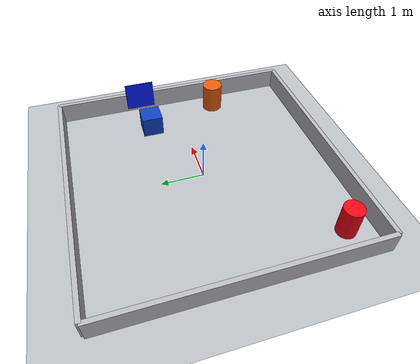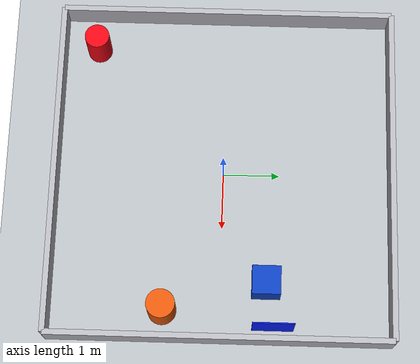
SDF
<?xml version="1.0"?>
<sdf version="1.6">
  <world name="zhirong_test_world">
    <gravity>0 0 -9.81</gravity>

    <physics name="default_physics" type="ode">
      <max_step_size>0.001</max_step_size>
      <real_time_factor>1.0</real_time_factor>
      <real_time_update_rate>1000.0</real_time_update_rate>
    </physics>

    <plugin name="gazebo_ros_state" filename="libgazebo_ros_state.so">
      <ros>
        <namespace>/</namespace>
      </ros>
      <update_rate>20.0</update_rate>
    </plugin>

    <light name="sun" type="directional">
      <cast_shadows>true</cast_shadows>
      <pose>0 0 10 0 0 0</pose>
      <diffuse>0.8 0.8 0.8 1</diffuse>
      <specular>0.2 0.2 0.2 1</specular>
      <attenuation>
        <range>1000</range>
        <constant>0.9</constant>
        <linear>0.01</linear>
        <quadratic>0.001</quadratic>
      </attenuation>
      <direction>-0.5 0.1 -0.9</direction>
    </light>

    <model name="ground_plane">
      <static>true</static>
      <link name="ground_link">
        <collision name="ground_collision">
          <geometry>
            <plane>
              <normal>0 0 1</normal>
              <size>100 100</size>
            </plane>
          </geometry>
          <surface>
            <friction>
              <ode>
                <mu>1.0</mu>
                <mu2>1.0</mu2>
              </ode>
            </friction>
          </surface>
        </collision>
        <visual name="ground_visual">
          <geometry>
            <plane>
              <normal>0 0 1</normal>
              <size>100 100</size>
            </plane>
          </geometry>
          <material>
            <ambient>0.62 0.64 0.66 1</ambient>
            <diffuse>0.72 0.74 0.76 1</diffuse>
            <specular>0.02 0.02 0.02 1</specular>
          </material>
        </visual>
      </link>
    </model>

    <model name="blue_obstacle">
      <static>true</static>
      <pose>2.0 0.8 0.25 0 0 0</pose>
      <link name="link">
        <collision name="collision">
          <geometry>
            <box>
              <size>0.5 0.5 0.5</size>
            </box>
          </geometry>
        </collision>
        <visual name="visual">
          <geometry>
            <box>
              <size>0.5 0.5 0.5</size>
            </box>
          </geometry>
          <material>
            <ambient>0.05 0.25 0.75 1</ambient>
            <diffuse>0.05 0.25 0.75 1</diffuse>
          </material>
        </visual>
      </link>
    </model>

    <model name="orange_obstacle">
      <static>true</static>
      <pose>2.5 -1.0 0.35 0 0 0</pose>
      <link name="link">
        <collision name="collision">
          <geometry>
            <cylinder>
              <radius>0.25</radius>
              <length>0.7</length>
            </cylinder>
          </geometry>
        </collision>
        <visual name="visual">
          <geometry>
            <cylinder>
              <radius>0.25</radius>
              <length>0.7</length>
            </cylinder>
          </geometry>
          <material>
            <ambient>0.9 0.35 0.05 1</ambient>
            <diffuse>0.9 0.35 0.05 1</diffuse>
          </material>
        </visual>
      </link>
    </model>

    <model name="blue_vision_marker">
      <static>true</static>
      <pose>2.82 0.92 0.52 0 0 0</pose>
      <link name="marker_link">
        <visual name="marker_visual">
          <geometry>
            <box>
              <size>0.02 0.72 0.72</size>
            </box>
          </geometry>
          <material>
            <ambient>0.02 0.12 1.0 1</ambient>
            <diffuse>0.02 0.12 1.0 1</diffuse>
            <specular>0 0 0 1</specular>
          </material>
        </visual>
      </link>
    </model>

    <model name="dynamic_obstacle">
      <static>false</static>
      <pose>-2.35 -2.35 0.36 0 0 0</pose>
      <link name="obstacle_link">
        <gravity>false</gravity>
        <kinematic>true</kinematic>
        <collision name="obstacle_collision">
          <geometry>
            <cylinder>
              <radius>0.22</radius>
              <length>0.72</length>
            </cylinder>
          </geometry>
        </collision>
        <visual name="obstacle_visual">
          <geometry>
            <cylinder>
              <radius>0.22</radius>
              <length>0.72</length>
            </cylinder>
          </geometry>
          <material>
            <ambient>0.95 0.02 0.08 1</ambient>
            <diffuse>0.95 0.02 0.08 1</diffuse>
            <specular>0 0 0 1</specular>
          </material>
        </visual>
        <inertial>
          <mass>5.0</mass>
          <inertia>
            <ixx>0.27</ixx>
            <iyy>0.27</iyy>
            <izz>0.12</izz>
          </inertia>
        </inertial>
      </link>
    </model>

    <model name="north_wall">
      <static>true</static>
      <pose>0 3.0 0.25 0 0 0</pose>
      <link name="link">
        <collision name="collision">
          <geometry>
            <box>
              <size>6.0 0.10 0.50</size>
            </box>
          </geometry>
        </collision>
        <visual name="visual">
          <geometry>
            <box>
              <size>6.0 0.10 0.50</size>
            </box>
          </geometry>
          <material>
            <ambient>0.65 0.65 0.68 1</ambient>
            <diffuse>0.72 0.72 0.75 1</diffuse>
          </material>
        </visual>
      </link>
    </model>

    <model name="south_wall">
      <static>true</static>
      <pose>0 -3.0 0.25 0 0 0</pose>
      <link name="link">
        <collision name="collision">
          <geometry>
            <box>
              <size>6.0 0.10 0.50</size>
            </box>
          </geometry>
        </collision>
        <visual name="visual">
          <geometry>
            <box>
              <size>6.0 0.10 0.50</size>
            </box>
          </geometry>
          <material>
            <ambient>0.65 0.65 0.68 1</ambient>
            <diffuse>0.72 0.72 0.75 1</diffuse>
          </material>
        </visual>
      </link>
    </model>

    <model name="east_wall">
      <static>true</static>
      <pose>3.0 0 0.25 0 0 0</pose>
      <link name="link">
        <collision name="collision">
          <geometry>
            <box>
              <size>0.10 6.0 0.50</size>
            </box>
          </geometry>
        </collision>
        <visual name="visual">
          <geometry>
            <box>
              <size>0.10 6.0 0.50</size>
            </box>
          </geometry>
          <material>
            <ambient>0.65 0.65 0.68 1</ambient>
            <diffuse>0.72 0.72 0.75 1</diffuse>
          </material>
        </visual>
      </link>
    </model>

    <model name="west_wall">
      <static>true</static>
      <pose>-3.0 0 0.25 0 0 0</pose>
      <link name="link">
        <collision name="collision">
          <geometry>
            <box>
              <size>0.10 6.0 0.50</size>
            </box>
          </geometry>
        </collision>
        <visual name="visual">
          <geometry>
            <box>
              <size>0.10 6.0 0.50</size>
            </box>
          </geometry>
          <material>
            <ambient>0.65 0.65 0.68 1</ambient>
            <diffuse>0.72 0.72 0.75 1</diffuse>
          </material>
        </visual>
      </link>
    </model>

    <scene>
      <ambient>0.4 0.4 0.4 1</ambient>
      <background>0.75 0.85 0.95 1</background>
      <shadows>true</shadows>
    </scene>

    <gui fullscreen="0">
      <camera name="user_camera">
        <pose>4.5 -5.5 3.8 0 0.45 2.25</pose>
      </camera>
    </gui>
  </world>
</sdf>
